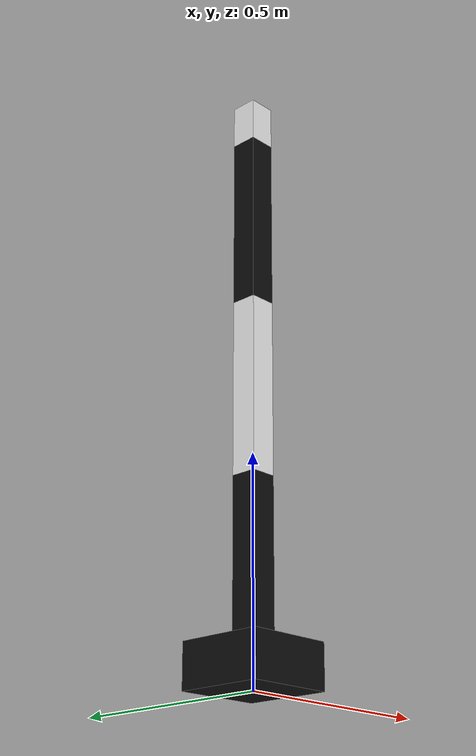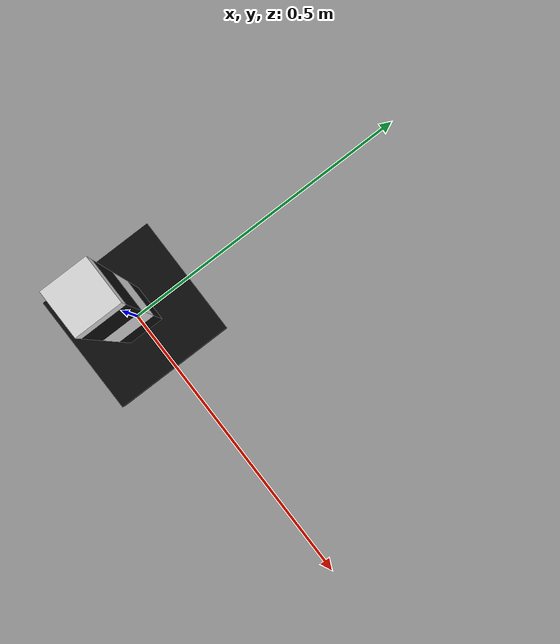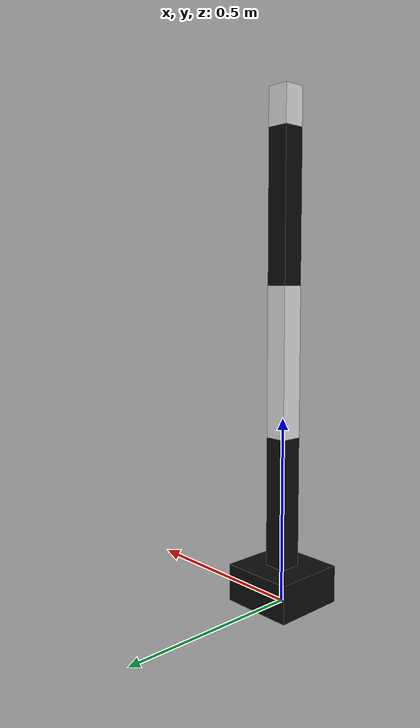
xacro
<?xml version="1.0"?>
<robot xmlns:xacro="http://www.ros.org/wiki/xacro" name="SNTRobot2">
    <xacro:arg name="initial_positions_file" default="initial_positions.yaml" />

    <!-- Import SNTRobot2 urdf file -->
    <xacro:include filename="$(find snt_robot_description)/urdf/SNTRobot2.urdf" />

    <!-- Import control_xacro -->
    <xacro:include filename="SNTRobot2.ros2_control.xacro" />

    <xacro:SNTRobot2_ros2_control name="SNT_HW" initial_positions_file="$(arg initial_positions_file)"/>

</robot>

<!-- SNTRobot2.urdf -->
<!-- |    This document was autogenerated by xacro from SNTRobot2.urdf.xacro           | -->
<!-- |    EDITING THIS FILE BY HAND IS NOT RECOMMENDED                                 | -->
<robot name="SNTRobot2">
  <!-- ====== 재질 ====== -->
  <material name="mat_black">
    <color rgba="0.05 0.05 0.05 1.0"/>
  </material>
  <material name="mat_orange">
    <color rgba="0.9 0.9 0.9 1.0"/>
  </material>
  <!-- ====== base ====== -->
  <link name="base_link">
    <visual>
      <origin xyz="0 0 0.05"/>
      <geometry>
        <box size="0.20 0.20 0.10"/>
      </geometry>
      <material name="mat_black"/>
    </visual>
    <collision>
      <origin xyz="0 0 0.05"/>
      <geometry>
        <box size="0.20 0.20 0.10"/>
      </geometry>
    </collision>
  </link>
  <link name="link1">
    <inertial>
      <origin rpy="0 0 0" xyz="0 0 0"/>
      <mass value="1.0"/>
      <inertia ixx="0.01" ixy="0" ixz="0" iyy="0.01" iyz="0" izz="0.01"/>
    </inertial>
    <visual>
      <origin rpy="0 0 0" xyz="0 0 0.175"/>
      <geometry>
        <box size="0.06 0.06 0.35"/>
      </geometry>
      <material name="mat_black"/>
    </visual>
    <collision>
      <origin rpy="0 0 0" xyz="0 0 0.175"/>
      <geometry>
        <box size="0.06 0.06 0.35"/>
      </geometry>
    </collision>
  </link>
  <link name="link2">
    <inertial>
      <origin rpy="0 0 0" xyz="0 0 0"/>
      <mass value="1.0"/>
      <inertia ixx="0.01" ixy="0" ixz="0" iyy="0.01" iyz="0" izz="0.01"/>
    </inertial>
    <visual>
      <origin rpy="0 0 0" xyz="0 0 0.2"/>
      <geometry>
        <box size="0.06 0.06 0.4"/>
      </geometry>
      <material name="mat_orange"/>
    </visual>
    <collision>
      <origin rpy="0 0 0" xyz="0 0 0.2"/>
      <geometry>
        <box size="0.06 0.06 0.4"/>
      </geometry>
    </collision>
  </link>
  <link name="link3">
    <inertial>
      <origin rpy="0 0 0" xyz="0 0 0"/>
      <mass value="1.0"/>
      <inertia ixx="0.01" ixy="0" ixz="0" iyy="0.01" iyz="0" izz="0.01"/>
    </inertial>
    <visual>
      <origin rpy="0 0 0" xyz="0 0 0.2"/>
      <geometry>
        <box size="0.06 0.06 0.4"/>
      </geometry>
      <material name="mat_black"/>
    </visual>
    <collision>
      <origin rpy="0 0 0" xyz="0 0 0.2"/>
      <geometry>
        <box size="0.06 0.06 0.4"/>
      </geometry>
    </collision>
  </link>
  <link name="link4">
    <inertial>
      <origin rpy="0 0 0" xyz="0 0 0"/>
      <mass value="1.0"/>
      <inertia ixx="0.01" ixy="0" ixz="0" iyy="0.01" iyz="0" izz="0.01"/>
    </inertial>
    <visual>
      <origin rpy="0 0 0" xyz="0 0 0.005"/>
      <geometry>
        <box size="0.001 0.001 0.01"/>
      </geometry>
      <material name="mat_black"/>
    </visual>
    <collision>
      <origin rpy="0 0 0" xyz="0 0 0.005"/>
      <geometry>
        <box size="0.001 0.001 0.01"/>
      </geometry>
    </collision>
  </link>
  <link name="link5">
    <inertial>
      <origin rpy="0 0 0" xyz="0 0 0"/>
      <mass value="1.0"/>
      <inertia ixx="0.01" ixy="0" ixz="0" iyy="0.01" iyz="0" izz="0.01"/>
    </inertial>
    <visual>
      <origin rpy="0 0 0" xyz="0 0 0.005"/>
      <geometry>
        <box size="0.001 0.001 0.01"/>
      </geometry>
      <material name="mat_orange"/>
    </visual>
    <collision>
      <origin rpy="0 0 0" xyz="0 0 0.005"/>
      <geometry>
        <box size="0.001 0.001 0.01"/>
      </geometry>
    </collision>
  </link>
  <link name="link6">
    <inertial>
      <origin rpy="0 0 0" xyz="0 0 0"/>
      <mass value="1.0"/>
      <inertia ixx="0.01" ixy="0" ixz="0" iyy="0.01" iyz="0" izz="0.01"/>
    </inertial>
    <visual>
      <origin rpy="0 0 0" xyz="0 0 0.05"/>
      <geometry>
        <box size="0.06 0.06 0.1"/>
      </geometry>
      <material name="mat_orange"/>
    </visual>
    <collision>
      <origin rpy="0 0 0" xyz="0 0 0.05"/>
      <geometry>
        <box size="0.06 0.06 0.1"/>
      </geometry>
    </collision>
  </link>
  <joint name="joint1" type="revolute">
    <parent link="base_link"/>
    <child link="link1"/>
    <origin rpy="0 0 0" xyz="0 0 0.10"/>
    <axis xyz="0 0 1"/>
    <limit effort="50" lower="-3.1416" upper="3.1416" velocity="2.0"/>
    <dynamics damping="0.1" friction="0.0"/>
  </joint>
  <joint name="joint2" type="revolute">
    <parent link="link1"/>
    <child link="link2"/>
    <origin rpy="0 0 0" xyz="0 0 0.35"/>
    <axis xyz="0 1 0"/>
    <limit effort="50" lower="-3.1416" upper="3.1416" velocity="2.0"/>
    <dynamics damping="0.1" friction="0.0"/>
  </joint>
  <joint name="joint3" type="revolute">
    <parent link="link2"/>
    <child link="link3"/>
    <origin rpy="0 0 0" xyz="0 0 0.4"/>
    <axis xyz="0 1 0"/>
    <limit effort="50" lower="-3.1416" upper="3.1416" velocity="2.0"/>
    <dynamics damping="0.1" friction="0.0"/>
  </joint>
  <!-- ====== Joint 4~6 (Spherical Wrist 핵심) ====== -->
  <joint name="joint4" type="revolute">
    <parent link="link3"/>
    <child link="link4"/>
    <origin rpy="0 0 0" xyz="0 0 0.4"/>
    <axis xyz="1 0 0"/>
    <limit effort="50" lower="-3.1416" upper="3.1416" velocity="2.0"/>
    <dynamics damping="0.1" friction="0.0"/>
  </joint>
  <joint name="joint5" type="revolute">
    <parent link="link4"/>
    <child link="link5"/>
    <origin rpy="0 0 0" xyz="0 0 0"/>
    <axis xyz="0 1 0"/>
    <limit effort="50" lower="-3.1416" upper="3.1416" velocity="2.0"/>
    <dynamics damping="0.1" friction="0.0"/>
  </joint>
  <joint name="joint6" type="revolute">
    <parent link="link5"/>
    <child link="link6"/>
    <origin rpy="0 0 0" xyz="0 0 0"/>
    <axis xyz="0 0 1"/>
    <limit effort="50" lower="-3.1416" upper="3.1416" velocity="2.0"/>
    <dynamics damping="0.1" friction="0.0"/>
  </joint>
</robot>
